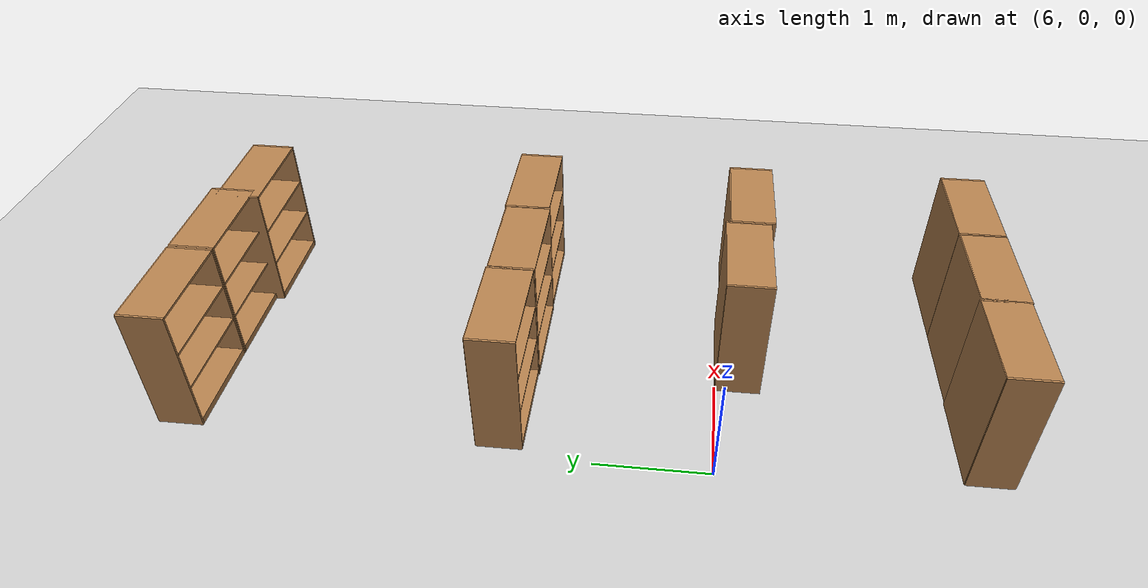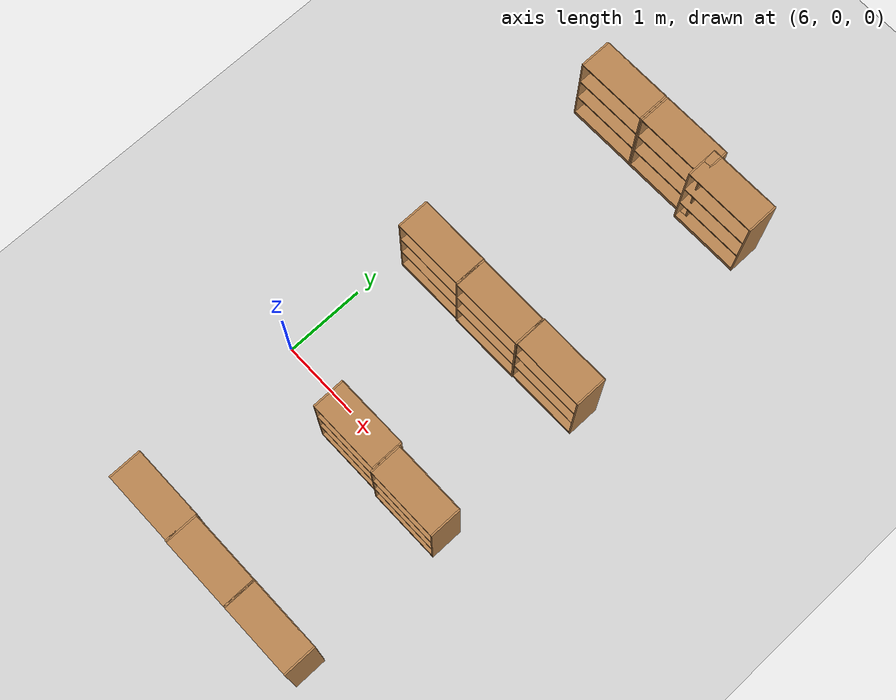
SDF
<sdf version="1.7">
 <world name="default">
  <model name="ground_plane">
   <static>1</static>
   <link name="link">
    <collision name="collision">
     <geometry><plane><normal>0 0 1</normal><size>100 100</size></plane></geometry>
     <surface>
      <contact><collide_bitmask>65535</collide_bitmask></contact>
      <friction><ode><mu>100</mu><mu2>50</mu2></ode></friction>
     </surface>
    </collision>
    <visual name="visual">
     <cast_shadows>0</cast_shadows>
     <geometry><plane><normal>0 0 1</normal><size>100 100</size></plane></geometry>
     <material>
      <script><uri>file://media/materials/scripts/gazebo.material</uri><name>Gazebo/Grey</name></script>
     </material>
    </visual>
   </link>
  </model>
  <model name="bookshelf_clone_14">
   <static>1</static>
   <link name="link">
    <inertial><mass>1</mass></inertial>
    <collision name="back">
     <pose>0 0.005 0.6 0 -0 0</pose>
     <geometry><box><size>0.9 0.01 1.2</size></box></geometry>
    </collision>
    <visual name="visual1">
     <pose>0 0.005 0.6 0 -0 0</pose>
     <geometry><box><size>0.9 0.01 1.2</size></box></geometry>
     <material>
      <script><uri>file://media/materials/scripts/gazebo.material</uri><name>Gazebo/Wood</name></script>
     </material>
    </visual>
    <collision name="left_side">
     <pose>0.45 -0.195 0.6 0 -0 0</pose>
     <geometry><box><size>0.02 0.4 1.2</size></box></geometry>
    </collision>
    <visual name="visual2">
     <pose>0.45 -0.195 0.6 0 -0 0</pose>
     <geometry><box><size>0.02 0.4 1.2</size></box></geometry>
     <material>
      <script><uri>file://media/materials/scripts/gazebo.material</uri><name>Gazebo/Wood</name></script>
     </material>
    </visual>
    <collision name="right_side">
     <pose>-0.45 -0.195 0.6 0 -0 0</pose>
     <geometry><box><size>0.02 0.4 1.2</size></box></geometry>
    </collision>
    <visual name="visual3">
     <pose>-0.45 -0.195 0.6 0 -0 0</pose>
     <geometry><box><size>0.02 0.4 1.2</size></box></geometry>
     <material>
      <script><uri>file://media/materials/scripts/gazebo.material</uri><name>Gazebo/Wood</name></script>
     </material>
    </visual>
    <collision name="bottom">
     <pose>0 -0.195 0.03 0 -0 0</pose>
     <geometry><box><size>0.88 0.4 0.06</size></box></geometry>
    </collision>
    <visual name="visual4">
     <pose>0 -0.195 0.03 0 -0 0</pose>
     <geometry><box><size>0.88 0.4 0.06</size></box></geometry>
     <material>
      <script><uri>file://media/materials/scripts/gazebo.material</uri><name>Gazebo/Wood</name></script>
     </material>
    </visual>
    <collision name="top">
     <pose>0 -0.195 1.19 0 -0 0</pose>
     <geometry><box><size>0.88 0.4 0.02</size></box></geometry>
    </collision>
    <visual name="visual5">
     <pose>0 -0.195 1.19 0 -0 0</pose>
     <geometry><box><size>0.88 0.4 0.02</size></box></geometry>
     <material>
      <script><uri>file://media/materials/scripts/gazebo.material</uri><name>Gazebo/Wood</name></script>
     </material>
    </visual>
    <collision name="low_shelf">
     <pose>0 -0.195 0.43 0 -0 0</pose>
     <geometry><box><size>0.88 0.4 0.02</size></box></geometry>
    </collision>
    <visual name="visual6">
     <pose>0 -0.195 0.43 0 -0 0</pose>
     <geometry><box><size>0.88 0.4 0.02</size></box></geometry>
     <material>
      <script><uri>file://media/materials/scripts/gazebo.material</uri><name>Gazebo/Wood</name></script>
     </material>
    </visual>
    <collision name="high_shelf">
     <pose>0 -0.195 0.8 0 -0 0</pose>
     <geometry><box><size>0.88 0.4 0.02</size></box></geometry>
    </collision>
    <visual name="visual7">
     <pose>0 -0.195 0.8 0 -0 0</pose>
     <geometry><box><size>0.88 0.4 0.02</size></box></geometry>
     <material>
      <script><uri>file://media/materials/scripts/gazebo.material</uri><name>Gazebo/Wood</name></script>
     </material>
    </visual>
   </link>
   <pose>8.25563 4.67392 0 0 -0 0</pose>
  </model>
  <model name="bookshelf_clone_15">
   <static>1</static>
   <link name="link">
    <inertial><mass>1</mass></inertial>
    <collision name="back">
     <pose>0 0.005 0.6 0 -0 0</pose>
     <geometry><box><size>0.9 0.01 1.2</size></box></geometry>
    </collision>
    <visual name="visual1">
     <pose>0 0.005 0.6 0 -0 0</pose>
     <geometry><box><size>0.9 0.01 1.2</size></box></geometry>
     <material>
      <script><uri>file://media/materials/scripts/gazebo.material</uri><name>Gazebo/Wood</name></script>
     </material>
    </visual>
    <collision name="left_side">
     <pose>0.45 -0.195 0.6 0 -0 0</pose>
     <geometry><box><size>0.02 0.4 1.2</size></box></geometry>
    </collision>
    <visual name="visual2">
     <pose>0.45 -0.195 0.6 0 -0 0</pose>
     <geometry><box><size>0.02 0.4 1.2</size></box></geometry>
     <material>
      <script><uri>file://media/materials/scripts/gazebo.material</uri><name>Gazebo/Wood</name></script>
     </material>
    </visual>
    <collision name="right_side">
     <pose>-0.45 -0.195 0.6 0 -0 0</pose>
     <geometry><box><size>0.02 0.4 1.2</size></box></geometry>
    </collision>
    <visual name="visual3">
     <pose>-0.45 -0.195 0.6 0 -0 0</pose>
     <geometry><box><size>0.02 0.4 1.2</size></box></geometry>
     <material>
      <script><uri>file://media/materials/scripts/gazebo.material</uri><name>Gazebo/Wood</name></script>
     </material>
    </visual>
    <collision name="bottom">
     <pose>0 -0.195 0.03 0 -0 0</pose>
     <geometry><box><size>0.88 0.4 0.06</size></box></geometry>
    </collision>
    <visual name="visual4">
     <pose>0 -0.195 0.03 0 -0 0</pose>
     <geometry><box><size>0.88 0.4 0.06</size></box></geometry>
     <material>
      <script><uri>file://media/materials/scripts/gazebo.material</uri><name>Gazebo/Wood</name></script>
     </material>
    </visual>
    <collision name="top">
     <pose>0 -0.195 1.19 0 -0 0</pose>
     <geometry><box><size>0.88 0.4 0.02</size></box></geometry>
    </collision>
    <visual name="visual5">
     <pose>0 -0.195 1.19 0 -0 0</pose>
     <geometry><box><size>0.88 0.4 0.02</size></box></geometry>
     <material>
      <script><uri>file://media/materials/scripts/gazebo.material</uri><name>Gazebo/Wood</name></script>
     </material>
    </visual>
    <collision name="low_shelf">
     <pose>0 -0.195 0.43 0 -0 0</pose>
     <geometry><box><size>0.88 0.4 0.02</size></box></geometry>
    </collision>
    <visual name="visual6">
     <pose>0 -0.195 0.43 0 -0 0</pose>
     <geometry><box><size>0.88 0.4 0.02</size></box></geometry>
     <material>
      <script><uri>file://media/materials/scripts/gazebo.material</uri><name>Gazebo/Wood</name></script>
     </material>
    </visual>
    <collision name="high_shelf">
     <pose>0 -0.195 0.8 0 -0 0</pose>
     <geometry><box><size>0.88 0.4 0.02</size></box></geometry>
    </collision>
    <visual name="visual7">
     <pose>0 -0.195 0.8 0 -0 0</pose>
     <geometry><box><size>0.88 0.4 0.02</size></box></geometry>
     <material>
      <script><uri>file://media/materials/scripts/gazebo.material</uri><name>Gazebo/Wood</name></script>
     </material>
    </visual>
   </link>
   <pose>7.45532 4.75433 0 0 -0 0</pose>
  </model>
  <model name="bookshelf_clone_16">
   <static>1</static>
   <link name="link">
    <inertial><mass>1</mass></inertial>
    <collision name="back">
     <pose>0 0.005 0.6 0 -0 0</pose>
     <geometry><box><size>0.9 0.01 1.2</size></box></geometry>
    </collision>
    <visual name="visual1">
     <pose>0 0.005 0.6 0 -0 0</pose>
     <geometry><box><size>0.9 0.01 1.2</size></box></geometry>
     <material>
      <script><uri>file://media/materials/scripts/gazebo.material</uri><name>Gazebo/Wood</name></script>
     </material>
    </visual>
    <collision name="left_side">
     <pose>0.45 -0.195 0.6 0 -0 0</pose>
     <geometry><box><size>0.02 0.4 1.2</size></box></geometry>
    </collision>
    <visual name="visual2">
     <pose>0.45 -0.195 0.6 0 -0 0</pose>
     <geometry><box><size>0.02 0.4 1.2</size></box></geometry>
     <material>
      <script><uri>file://media/materials/scripts/gazebo.material</uri><name>Gazebo/Wood</name></script>
     </material>
    </visual>
    <collision name="right_side">
     <pose>-0.45 -0.195 0.6 0 -0 0</pose>
     <geometry><box><size>0.02 0.4 1.2</size></box></geometry>
    </collision>
    <visual name="visual3">
     <pose>-0.45 -0.195 0.6 0 -0 0</pose>
     <geometry><box><size>0.02 0.4 1.2</size></box></geometry>
     <material>
      <script><uri>file://media/materials/scripts/gazebo.material</uri><name>Gazebo/Wood</name></script>
     </material>
    </visual>
    <collision name="bottom">
     <pose>0 -0.195 0.03 0 -0 0</pose>
     <geometry><box><size>0.88 0.4 0.06</size></box></geometry>
    </collision>
    <visual name="visual4">
     <pose>0 -0.195 0.03 0 -0 0</pose>
     <geometry><box><size>0.88 0.4 0.06</size></box></geometry>
     <material>
      <script><uri>file://media/materials/scripts/gazebo.material</uri><name>Gazebo/Wood</name></script>
     </material>
    </visual>
    <collision name="top">
     <pose>0 -0.195 1.19 0 -0 0</pose>
     <geometry><box><size>0.88 0.4 0.02</size></box></geometry>
    </collision>
    <visual name="visual5">
     <pose>0 -0.195 1.19 0 -0 0</pose>
     <geometry><box><size>0.88 0.4 0.02</size></box></geometry>
     <material>
      <script><uri>file://media/materials/scripts/gazebo.material</uri><name>Gazebo/Wood</name></script>
     </material>
    </visual>
    <collision name="low_shelf">
     <pose>0 -0.195 0.43 0 -0 0</pose>
     <geometry><box><size>0.88 0.4 0.02</size></box></geometry>
    </collision>
    <visual name="visual6">
     <pose>0 -0.195 0.43 0 -0 0</pose>
     <geometry><box><size>0.88 0.4 0.02</size></box></geometry>
     <material>
      <script><uri>file://media/materials/scripts/gazebo.material</uri><name>Gazebo/Wood</name></script>
     </material>
    </visual>
    <collision name="high_shelf">
     <pose>0 -0.195 0.8 0 -0 0</pose>
     <geometry><box><size>0.88 0.4 0.02</size></box></geometry>
    </collision>
    <visual name="visual7">
     <pose>0 -0.195 0.8 0 -0 0</pose>
     <geometry><box><size>0.88 0.4 0.02</size></box></geometry>
     <material>
      <script><uri>file://media/materials/scripts/gazebo.material</uri><name>Gazebo/Wood</name></script>
     </material>
    </visual>
   </link>
   <pose>6.5343 4.75553 0 0 -0 0</pose>
  </model>
  <model name="bookshelf_clone_18">
   <static>1</static>
   <link name="link">
    <inertial><mass>1</mass></inertial>
    <collision name="back">
     <pose>0 0.005 0.6 0 -0 0</pose>
     <geometry><box><size>0.9 0.01 1.2</size></box></geometry>
    </collision>
    <visual name="visual1">
     <pose>0 0.005 0.6 0 -0 0</pose>
     <geometry><box><size>0.9 0.01 1.2</size></box></geometry>
     <material>
      <script><uri>file://media/materials/scripts/gazebo.material</uri><name>Gazebo/Wood</name></script>
     </material>
    </visual>
    <collision name="left_side">
     <pose>0.45 -0.195 0.6 0 -0 0</pose>
     <geometry><box><size>0.02 0.4 1.2</size></box></geometry>
    </collision>
    <visual name="visual2">
     <pose>0.45 -0.195 0.6 0 -0 0</pose>
     <geometry><box><size>0.02 0.4 1.2</size></box></geometry>
     <material>
      <script><uri>file://media/materials/scripts/gazebo.material</uri><name>Gazebo/Wood</name></script>
     </material>
    </visual>
    <collision name="right_side">
     <pose>-0.45 -0.195 0.6 0 -0 0</pose>
     <geometry><box><size>0.02 0.4 1.2</size></box></geometry>
    </collision>
    <visual name="visual3">
     <pose>-0.45 -0.195 0.6 0 -0 0</pose>
     <geometry><box><size>0.02 0.4 1.2</size></box></geometry>
     <material>
      <script><uri>file://media/materials/scripts/gazebo.material</uri><name>Gazebo/Wood</name></script>
     </material>
    </visual>
    <collision name="bottom">
     <pose>0 -0.195 0.03 0 -0 0</pose>
     <geometry><box><size>0.88 0.4 0.06</size></box></geometry>
    </collision>
    <visual name="visual4">
     <pose>0 -0.195 0.03 0 -0 0</pose>
     <geometry><box><size>0.88 0.4 0.06</size></box></geometry>
     <material>
      <script><uri>file://media/materials/scripts/gazebo.material</uri><name>Gazebo/Wood</name></script>
     </material>
    </visual>
    <collision name="top">
     <pose>0 -0.195 1.19 0 -0 0</pose>
     <geometry><box><size>0.88 0.4 0.02</size></box></geometry>
    </collision>
    <visual name="visual5">
     <pose>0 -0.195 1.19 0 -0 0</pose>
     <geometry><box><size>0.88 0.4 0.02</size></box></geometry>
     <material>
      <script><uri>file://media/materials/scripts/gazebo.material</uri><name>Gazebo/Wood</name></script>
     </material>
    </visual>
    <collision name="low_shelf">
     <pose>0 -0.195 0.43 0 -0 0</pose>
     <geometry><box><size>0.88 0.4 0.02</size></box></geometry>
    </collision>
    <visual name="visual6">
     <pose>0 -0.195 0.43 0 -0 0</pose>
     <geometry><box><size>0.88 0.4 0.02</size></box></geometry>
     <material>
      <script><uri>file://media/materials/scripts/gazebo.material</uri><name>Gazebo/Wood</name></script>
     </material>
    </visual>
    <collision name="high_shelf">
     <pose>0 -0.195 0.8 0 -0 0</pose>
     <geometry><box><size>0.88 0.4 0.02</size></box></geometry>
    </collision>
    <visual name="visual7">
     <pose>0 -0.195 0.8 0 -0 0</pose>
     <geometry><box><size>0.88 0.4 0.02</size></box></geometry>
     <material>
      <script><uri>file://media/materials/scripts/gazebo.material</uri><name>Gazebo/Wood</name></script>
     </material>
    </visual>
   </link>
   <pose>8.36929 1.98739 0 0 -0 0</pose>
  </model>
  <model name="bookshelf_clone_19">
   <static>1</static>
   <link name="link">
    <inertial><mass>1</mass></inertial>
    <collision name="back">
     <pose>0 0.005 0.6 0 -0 0</pose>
     <geometry><box><size>0.9 0.01 1.2</size></box></geometry>
    </collision>
    <visual name="visual1">
     <pose>0 0.005 0.6 0 -0 0</pose>
     <geometry><box><size>0.9 0.01 1.2</size></box></geometry>
     <material>
      <script><uri>file://media/materials/scripts/gazebo.material</uri><name>Gazebo/Wood</name></script>
     </material>
    </visual>
    <collision name="left_side">
     <pose>0.45 -0.195 0.6 0 -0 0</pose>
     <geometry><box><size>0.02 0.4 1.2</size></box></geometry>
    </collision>
    <visual name="visual2">
     <pose>0.45 -0.195 0.6 0 -0 0</pose>
     <geometry><box><size>0.02 0.4 1.2</size></box></geometry>
     <material>
      <script><uri>file://media/materials/scripts/gazebo.material</uri><name>Gazebo/Wood</name></script>
     </material>
    </visual>
    <collision name="right_side">
     <pose>-0.45 -0.195 0.6 0 -0 0</pose>
     <geometry><box><size>0.02 0.4 1.2</size></box></geometry>
    </collision>
    <visual name="visual3">
     <pose>-0.45 -0.195 0.6 0 -0 0</pose>
     <geometry><box><size>0.02 0.4 1.2</size></box></geometry>
     <material>
      <script><uri>file://media/materials/scripts/gazebo.material</uri><name>Gazebo/Wood</name></script>
     </material>
    </visual>
    <collision name="bottom">
     <pose>0 -0.195 0.03 0 -0 0</pose>
     <geometry><box><size>0.88 0.4 0.06</size></box></geometry>
    </collision>
    <visual name="visual4">
     <pose>0 -0.195 0.03 0 -0 0</pose>
     <geometry><box><size>0.88 0.4 0.06</size></box></geometry>
     <material>
      <script><uri>file://media/materials/scripts/gazebo.material</uri><name>Gazebo/Wood</name></script>
     </material>
    </visual>
    <collision name="top">
     <pose>0 -0.195 1.19 0 -0 0</pose>
     <geometry><box><size>0.88 0.4 0.02</size></box></geometry>
    </collision>
    <visual name="visual5">
     <pose>0 -0.195 1.19 0 -0 0</pose>
     <geometry><box><size>0.88 0.4 0.02</size></box></geometry>
     <material>
      <script><uri>file://media/materials/scripts/gazebo.material</uri><name>Gazebo/Wood</name></script>
     </material>
    </visual>
    <collision name="low_shelf">
     <pose>0 -0.195 0.43 0 -0 0</pose>
     <geometry><box><size>0.88 0.4 0.02</size></box></geometry>
    </collision>
    <visual name="visual6">
     <pose>0 -0.195 0.43 0 -0 0</pose>
     <geometry><box><size>0.88 0.4 0.02</size></box></geometry>
     <material>
      <script><uri>file://media/materials/scripts/gazebo.material</uri><name>Gazebo/Wood</name></script>
     </material>
    </visual>
    <collision name="high_shelf">
     <pose>0 -0.195 0.8 0 -0 0</pose>
     <geometry><box><size>0.88 0.4 0.02</size></box></geometry>
    </collision>
    <visual name="visual7">
     <pose>0 -0.195 0.8 0 -0 0</pose>
     <geometry><box><size>0.88 0.4 0.02</size></box></geometry>
     <material>
      <script><uri>file://media/materials/scripts/gazebo.material</uri><name>Gazebo/Wood</name></script>
     </material>
    </visual>
   </link>
   <pose>7.46263 1.97882 0 0 -0 0</pose>
  </model>
  <model name="bookshelf_clone_20">
   <static>1</static>
   <link name="link">
    <inertial><mass>1</mass></inertial>
    <collision name="back">
     <pose>0 0.005 0.6 0 -0 0</pose>
     <geometry><box><size>0.9 0.01 1.2</size></box></geometry>
    </collision>
    <visual name="visual1">
     <pose>0 0.005 0.6 0 -0 0</pose>
     <geometry><box><size>0.9 0.01 1.2</size></box></geometry>
     <material>
      <script><uri>file://media/materials/scripts/gazebo.material</uri><name>Gazebo/Wood</name></script>
     </material>
    </visual>
    <collision name="left_side">
     <pose>0.45 -0.195 0.6 0 -0 0</pose>
     <geometry><box><size>0.02 0.4 1.2</size></box></geometry>
    </collision>
    <visual name="visual2">
     <pose>0.45 -0.195 0.6 0 -0 0</pose>
     <geometry><box><size>0.02 0.4 1.2</size></box></geometry>
     <material>
      <script><uri>file://media/materials/scripts/gazebo.material</uri><name>Gazebo/Wood</name></script>
     </material>
    </visual>
    <collision name="right_side">
     <pose>-0.45 -0.195 0.6 0 -0 0</pose>
     <geometry><box><size>0.02 0.4 1.2</size></box></geometry>
    </collision>
    <visual name="visual3">
     <pose>-0.45 -0.195 0.6 0 -0 0</pose>
     <geometry><box><size>0.02 0.4 1.2</size></box></geometry>
     <material>
      <script><uri>file://media/materials/scripts/gazebo.material</uri><name>Gazebo/Wood</name></script>
     </material>
    </visual>
    <collision name="bottom">
     <pose>0 -0.195 0.03 0 -0 0</pose>
     <geometry><box><size>0.88 0.4 0.06</size></box></geometry>
    </collision>
    <visual name="visual4">
     <pose>0 -0.195 0.03 0 -0 0</pose>
     <geometry><box><size>0.88 0.4 0.06</size></box></geometry>
     <material>
      <script><uri>file://media/materials/scripts/gazebo.material</uri><name>Gazebo/Wood</name></script>
     </material>
    </visual>
    <collision name="top">
     <pose>0 -0.195 1.19 0 -0 0</pose>
     <geometry><box><size>0.88 0.4 0.02</size></box></geometry>
    </collision>
    <visual name="visual5">
     <pose>0 -0.195 1.19 0 -0 0</pose>
     <geometry><box><size>0.88 0.4 0.02</size></box></geometry>
     <material>
      <script><uri>file://media/materials/scripts/gazebo.material</uri><name>Gazebo/Wood</name></script>
     </material>
    </visual>
    <collision name="low_shelf">
     <pose>0 -0.195 0.43 0 -0 0</pose>
     <geometry><box><size>0.88 0.4 0.02</size></box></geometry>
    </collision>
    <visual name="visual6">
     <pose>0 -0.195 0.43 0 -0 0</pose>
     <geometry><box><size>0.88 0.4 0.02</size></box></geometry>
     <material>
      <script><uri>file://media/materials/scripts/gazebo.material</uri><name>Gazebo/Wood</name></script>
     </material>
    </visual>
    <collision name="high_shelf">
     <pose>0 -0.195 0.8 0 -0 0</pose>
     <geometry><box><size>0.88 0.4 0.02</size></box></geometry>
    </collision>
    <visual name="visual7">
     <pose>0 -0.195 0.8 0 -0 0</pose>
     <geometry><box><size>0.88 0.4 0.02</size></box></geometry>
     <material>
      <script><uri>file://media/materials/scripts/gazebo.material</uri><name>Gazebo/Wood</name></script>
     </material>
    </visual>
   </link>
   <pose>6.55596 1.98739 0 0 -0 0</pose>
  </model>
  <model name="bookshelf_clone_22">
   <static>1</static>
   <link name="link">
    <inertial><mass>1</mass></inertial>
    <collision name="back">
     <pose>0 0.005 0.6 0 -0 0</pose>
     <geometry><box><size>0.9 0.01 1.2</size></box></geometry>
    </collision>
    <visual name="visual1">
     <pose>0 0.005 0.6 0 -0 0</pose>
     <geometry><box><size>0.9 0.01 1.2</size></box></geometry>
     <material>
      <script><uri>file://media/materials/scripts/gazebo.material</uri><name>Gazebo/Wood</name></script>
     </material>
    </visual>
    <collision name="left_side">
     <pose>0.45 -0.195 0.6 0 -0 0</pose>
     <geometry><box><size>0.02 0.4 1.2</size></box></geometry>
    </collision>
    <visual name="visual2">
     <pose>0.45 -0.195 0.6 0 -0 0</pose>
     <geometry><box><size>0.02 0.4 1.2</size></box></geometry>
     <material>
      <script><uri>file://media/materials/scripts/gazebo.material</uri><name>Gazebo/Wood</name></script>
     </material>
    </visual>
    <collision name="right_side">
     <pose>-0.45 -0.195 0.6 0 -0 0</pose>
     <geometry><box><size>0.02 0.4 1.2</size></box></geometry>
    </collision>
    <visual name="visual3">
     <pose>-0.45 -0.195 0.6 0 -0 0</pose>
     <geometry><box><size>0.02 0.4 1.2</size></box></geometry>
     <material>
      <script><uri>file://media/materials/scripts/gazebo.material</uri><name>Gazebo/Wood</name></script>
     </material>
    </visual>
    <collision name="bottom">
     <pose>0 -0.195 0.03 0 -0 0</pose>
     <geometry><box><size>0.88 0.4 0.06</size></box></geometry>
    </collision>
    <visual name="visual4">
     <pose>0 -0.195 0.03 0 -0 0</pose>
     <geometry><box><size>0.88 0.4 0.06</size></box></geometry>
     <material>
      <script><uri>file://media/materials/scripts/gazebo.material</uri><name>Gazebo/Wood</name></script>
     </material>
    </visual>
    <collision name="top">
     <pose>0 -0.195 1.19 0 -0 0</pose>
     <geometry><box><size>0.88 0.4 0.02</size></box></geometry>
    </collision>
    <visual name="visual5">
     <pose>0 -0.195 1.19 0 -0 0</pose>
     <geometry><box><size>0.88 0.4 0.02</size></box></geometry>
     <material>
      <script><uri>file://media/materials/scripts/gazebo.material</uri><name>Gazebo/Wood</name></script>
     </material>
    </visual>
    <collision name="low_shelf">
     <pose>0 -0.195 0.43 0 -0 0</pose>
     <geometry><box><size>0.88 0.4 0.02</size></box></geometry>
    </collision>
    <visual name="visual6">
     <pose>0 -0.195 0.43 0 -0 0</pose>
     <geometry><box><size>0.88 0.4 0.02</size></box></geometry>
     <material>
      <script><uri>file://media/materials/scripts/gazebo.material</uri><name>Gazebo/Wood</name></script>
     </material>
    </visual>
    <collision name="high_shelf">
     <pose>0 -0.195 0.8 0 -0 0</pose>
     <geometry><box><size>0.88 0.4 0.02</size></box></geometry>
    </collision>
    <visual name="visual7">
     <pose>0 -0.195 0.8 0 -0 0</pose>
     <geometry><box><size>0.88 0.4 0.02</size></box></geometry>
     <material>
      <script><uri>file://media/materials/scripts/gazebo.material</uri><name>Gazebo/Wood</name></script>
     </material>
    </visual>
   </link>
   <pose>8.34112 -0.04224 0 0 -0 0</pose>
  </model>
  <model name="bookshelf_clone_23">
   <static>1</static>
   <link name="link">
    <inertial><mass>1</mass></inertial>
    <collision name="back">
     <pose>0 0.005 0.6 0 -0 0</pose>
     <geometry><box><size>0.9 0.01 1.2</size></box></geometry>
    </collision>
    <visual name="visual1">
     <pose>0 0.005 0.6 0 -0 0</pose>
     <geometry><box><size>0.9 0.01 1.2</size></box></geometry>
     <material>
      <script><uri>file://media/materials/scripts/gazebo.material</uri><name>Gazebo/Wood</name></script>
     </material>
    </visual>
    <collision name="left_side">
     <pose>0.45 -0.195 0.6 0 -0 0</pose>
     <geometry><box><size>0.02 0.4 1.2</size></box></geometry>
    </collision>
    <visual name="visual2">
     <pose>0.45 -0.195 0.6 0 -0 0</pose>
     <geometry><box><size>0.02 0.4 1.2</size></box></geometry>
     <material>
      <script><uri>file://media/materials/scripts/gazebo.material</uri><name>Gazebo/Wood</name></script>
     </material>
    </visual>
    <collision name="right_side">
     <pose>-0.45 -0.195 0.6 0 -0 0</pose>
     <geometry><box><size>0.02 0.4 1.2</size></box></geometry>
    </collision>
    <visual name="visual3">
     <pose>-0.45 -0.195 0.6 0 -0 0</pose>
     <geometry><box><size>0.02 0.4 1.2</size></box></geometry>
     <material>
      <script><uri>file://media/materials/scripts/gazebo.material</uri><name>Gazebo/Wood</name></script>
     </material>
    </visual>
    <collision name="bottom">
     <pose>0 -0.195 0.03 0 -0 0</pose>
     <geometry><box><size>0.88 0.4 0.06</size></box></geometry>
    </collision>
    <visual name="visual4">
     <pose>0 -0.195 0.03 0 -0 0</pose>
     <geometry><box><size>0.88 0.4 0.06</size></box></geometry>
     <material>
      <script><uri>file://media/materials/scripts/gazebo.material</uri><name>Gazebo/Wood</name></script>
     </material>
    </visual>
    <collision name="top">
     <pose>0 -0.195 1.19 0 -0 0</pose>
     <geometry><box><size>0.88 0.4 0.02</size></box></geometry>
    </collision>
    <visual name="visual5">
     <pose>0 -0.195 1.19 0 -0 0</pose>
     <geometry><box><size>0.88 0.4 0.02</size></box></geometry>
     <material>
      <script><uri>file://media/materials/scripts/gazebo.material</uri><name>Gazebo/Wood</name></script>
     </material>
    </visual>
    <collision name="low_shelf">
     <pose>0 -0.195 0.43 0 -0 0</pose>
     <geometry><box><size>0.88 0.4 0.02</size></box></geometry>
    </collision>
    <visual name="visual6">
     <pose>0 -0.195 0.43 0 -0 0</pose>
     <geometry><box><size>0.88 0.4 0.02</size></box></geometry>
     <material>
      <script><uri>file://media/materials/scripts/gazebo.material</uri><name>Gazebo/Wood</name></script>
     </material>
    </visual>
    <collision name="high_shelf">
     <pose>0 -0.195 0.8 0 -0 0</pose>
     <geometry><box><size>0.88 0.4 0.02</size></box></geometry>
    </collision>
    <visual name="visual7">
     <pose>0 -0.195 0.8 0 -0 0</pose>
     <geometry><box><size>0.88 0.4 0.02</size></box></geometry>
     <material>
      <script><uri>file://media/materials/scripts/gazebo.material</uri><name>Gazebo/Wood</name></script>
     </material>
    </visual>
   </link>
   <pose>7.42762 -0.003693 0 0 -0 0</pose>
  </model>
  <model name="bookshelf_clone_26">
   <static>1</static>
   <link name="link">
    <inertial><mass>1</mass></inertial>
    <collision name="back">
     <pose>0 0.005 0.6 0 -0 0</pose>
     <geometry><box><size>0.9 0.01 1.2</size></box></geometry>
    </collision>
    <visual name="visual1">
     <pose>0 0.005 0.6 0 -0 0</pose>
     <geometry><box><size>0.9 0.01 1.2</size></box></geometry>
     <material>
      <script><uri>file://media/materials/scripts/gazebo.material</uri><name>Gazebo/Wood</name></script>
     </material>
    </visual>
    <collision name="left_side">
     <pose>0.45 -0.195 0.6 0 -0 0</pose>
     <geometry><box><size>0.02 0.4 1.2</size></box></geometry>
    </collision>
    <visual name="visual2">
     <pose>0.45 -0.195 0.6 0 -0 0</pose>
     <geometry><box><size>0.02 0.4 1.2</size></box></geometry>
     <material>
      <script><uri>file://media/materials/scripts/gazebo.material</uri><name>Gazebo/Wood</name></script>
     </material>
    </visual>
    <collision name="right_side">
     <pose>-0.45 -0.195 0.6 0 -0 0</pose>
     <geometry><box><size>0.02 0.4 1.2</size></box></geometry>
    </collision>
    <visual name="visual3">
     <pose>-0.45 -0.195 0.6 0 -0 0</pose>
     <geometry><box><size>0.02 0.4 1.2</size></box></geometry>
     <material>
      <script><uri>file://media/materials/scripts/gazebo.material</uri><name>Gazebo/Wood</name></script>
     </material>
    </visual>
    <collision name="bottom">
     <pose>0 -0.195 0.03 0 -0 0</pose>
     <geometry><box><size>0.88 0.4 0.06</size></box></geometry>
    </collision>
    <visual name="visual4">
     <pose>0 -0.195 0.03 0 -0 0</pose>
     <geometry><box><size>0.88 0.4 0.06</size></box></geometry>
     <material>
      <script><uri>file://media/materials/scripts/gazebo.material</uri><name>Gazebo/Wood</name></script>
     </material>
    </visual>
    <collision name="top">
     <pose>0 -0.195 1.19 0 -0 0</pose>
     <geometry><box><size>0.88 0.4 0.02</size></box></geometry>
    </collision>
    <visual name="visual5">
     <pose>0 -0.195 1.19 0 -0 0</pose>
     <geometry><box><size>0.88 0.4 0.02</size></box></geometry>
     <material>
      <script><uri>file://media/materials/scripts/gazebo.material</uri><name>Gazebo/Wood</name></script>
     </material>
    </visual>
    <collision name="low_shelf">
     <pose>0 -0.195 0.43 0 -0 0</pose>
     <geometry><box><size>0.88 0.4 0.02</size></box></geometry>
    </collision>
    <visual name="visual6">
     <pose>0 -0.195 0.43 0 -0 0</pose>
     <geometry><box><size>0.88 0.4 0.02</size></box></geometry>
     <material>
      <script><uri>file://media/materials/scripts/gazebo.material</uri><name>Gazebo/Wood</name></script>
     </material>
    </visual>
    <collision name="high_shelf">
     <pose>0 -0.195 0.8 0 -0 0</pose>
     <geometry><box><size>0.88 0.4 0.02</size></box></geometry>
    </collision>
    <visual name="visual7">
     <pose>0 -0.195 0.8 0 -0 0</pose>
     <geometry><box><size>0.88 0.4 0.02</size></box></geometry>
     <material>
      <script><uri>file://media/materials/scripts/gazebo.material</uri><name>Gazebo/Wood</name></script>
     </material>
    </visual>
   </link>
   <pose>8.36544 -2.02068 0 0 -0 0</pose>
  </model>
  <model name="bookshelf_clone_27">
   <static>1</static>
   <link name="link">
    <inertial><mass>1</mass></inertial>
    <collision name="back">
     <pose>0 0.005 0.6 0 -0 0</pose>
     <geometry><box><size>0.9 0.01 1.2</size></box></geometry>
    </collision>
    <visual name="visual1">
     <pose>0 0.005 0.6 0 -0 0</pose>
     <geometry><box><size>0.9 0.01 1.2</size></box></geometry>
     <material>
      <script><uri>file://media/materials/scripts/gazebo.material</uri><name>Gazebo/Wood</name></script>
     </material>
    </visual>
    <collision name="left_side">
     <pose>0.45 -0.195 0.6 0 -0 0</pose>
     <geometry><box><size>0.02 0.4 1.2</size></box></geometry>
    </collision>
    <visual name="visual2">
     <pose>0.45 -0.195 0.6 0 -0 0</pose>
     <geometry><box><size>0.02 0.4 1.2</size></box></geometry>
     <material>
      <script><uri>file://media/materials/scripts/gazebo.material</uri><name>Gazebo/Wood</name></script>
     </material>
    </visual>
    <collision name="right_side">
     <pose>-0.45 -0.195 0.6 0 -0 0</pose>
     <geometry><box><size>0.02 0.4 1.2</size></box></geometry>
    </collision>
    <visual name="visual3">
     <pose>-0.45 -0.195 0.6 0 -0 0</pose>
     <geometry><box><size>0.02 0.4 1.2</size></box></geometry>
     <material>
      <script><uri>file://media/materials/scripts/gazebo.material</uri><name>Gazebo/Wood</name></script>
     </material>
    </visual>
    <collision name="bottom">
     <pose>0 -0.195 0.03 0 -0 0</pose>
     <geometry><box><size>0.88 0.4 0.06</size></box></geometry>
    </collision>
    <visual name="visual4">
     <pose>0 -0.195 0.03 0 -0 0</pose>
     <geometry><box><size>0.88 0.4 0.06</size></box></geometry>
     <material>
      <script><uri>file://media/materials/scripts/gazebo.material</uri><name>Gazebo/Wood</name></script>
     </material>
    </visual>
    <collision name="top">
     <pose>0 -0.195 1.19 0 -0 0</pose>
     <geometry><box><size>0.88 0.4 0.02</size></box></geometry>
    </collision>
    <visual name="visual5">
     <pose>0 -0.195 1.19 0 -0 0</pose>
     <geometry><box><size>0.88 0.4 0.02</size></box></geometry>
     <material>
      <script><uri>file://media/materials/scripts/gazebo.material</uri><name>Gazebo/Wood</name></script>
     </material>
    </visual>
    <collision name="low_shelf">
     <pose>0 -0.195 0.43 0 -0 0</pose>
     <geometry><box><size>0.88 0.4 0.02</size></box></geometry>
    </collision>
    <visual name="visual6">
     <pose>0 -0.195 0.43 0 -0 0</pose>
     <geometry><box><size>0.88 0.4 0.02</size></box></geometry>
     <material>
      <script><uri>file://media/materials/scripts/gazebo.material</uri><name>Gazebo/Wood</name></script>
     </material>
    </visual>
    <collision name="high_shelf">
     <pose>0 -0.195 0.8 0 -0 0</pose>
     <geometry><box><size>0.88 0.4 0.02</size></box></geometry>
    </collision>
    <visual name="visual7">
     <pose>0 -0.195 0.8 0 -0 0</pose>
     <geometry><box><size>0.88 0.4 0.02</size></box></geometry>
     <material>
      <script><uri>file://media/materials/scripts/gazebo.material</uri><name>Gazebo/Wood</name></script>
     </material>
    </visual>
   </link>
   <pose>7.45889 -2.02068 0 0 -0 0</pose>
  </model>
  <model name="bookshelf_clone_28">
   <static>1</static>
   <link name="link">
    <inertial><mass>1</mass></inertial>
    <collision name="back">
     <pose>0 0.005 0.6 0 -0 0</pose>
     <geometry><box><size>0.9 0.01 1.2</size></box></geometry>
    </collision>
    <visual name="visual1">
     <pose>0 0.005 0.6 0 -0 0</pose>
     <geometry><box><size>0.9 0.01 1.2</size></box></geometry>
     <material>
      <script><uri>file://media/materials/scripts/gazebo.material</uri><name>Gazebo/Wood</name></script>
     </material>
    </visual>
    <collision name="left_side">
     <pose>0.45 -0.195 0.6 0 -0 0</pose>
     <geometry><box><size>0.02 0.4 1.2</size></box></geometry>
    </collision>
    <visual name="visual2">
     <pose>0.45 -0.195 0.6 0 -0 0</pose>
     <geometry><box><size>0.02 0.4 1.2</size></box></geometry>
     <material>
      <script><uri>file://media/materials/scripts/gazebo.material</uri><name>Gazebo/Wood</name></script>
     </material>
    </visual>
    <collision name="right_side">
     <pose>-0.45 -0.195 0.6 0 -0 0</pose>
     <geometry><box><size>0.02 0.4 1.2</size></box></geometry>
    </collision>
    <visual name="visual3">
     <pose>-0.45 -0.195 0.6 0 -0 0</pose>
     <geometry><box><size>0.02 0.4 1.2</size></box></geometry>
     <material>
      <script><uri>file://media/materials/scripts/gazebo.material</uri><name>Gazebo/Wood</name></script>
     </material>
    </visual>
    <collision name="bottom">
     <pose>0 -0.195 0.03 0 -0 0</pose>
     <geometry><box><size>0.88 0.4 0.06</size></box></geometry>
    </collision>
    <visual name="visual4">
     <pose>0 -0.195 0.03 0 -0 0</pose>
     <geometry><box><size>0.88 0.4 0.06</size></box></geometry>
     <material>
      <script><uri>file://media/materials/scripts/gazebo.material</uri><name>Gazebo/Wood</name></script>
     </material>
    </visual>
    <collision name="top">
     <pose>0 -0.195 1.19 0 -0 0</pose>
     <geometry><box><size>0.88 0.4 0.02</size></box></geometry>
    </collision>
    <visual name="visual5">
     <pose>0 -0.195 1.19 0 -0 0</pose>
     <geometry><box><size>0.88 0.4 0.02</size></box></geometry>
     <material>
      <script><uri>file://media/materials/scripts/gazebo.material</uri><name>Gazebo/Wood</name></script>
     </material>
    </visual>
    <collision name="low_shelf">
     <pose>0 -0.195 0.43 0 -0 0</pose>
     <geometry><box><size>0.88 0.4 0.02</size></box></geometry>
    </collision>
    <visual name="visual6">
     <pose>0 -0.195 0.43 0 -0 0</pose>
     <geometry><box><size>0.88 0.4 0.02</size></box></geometry>
     <material>
      <script><uri>file://media/materials/scripts/gazebo.material</uri><name>Gazebo/Wood</name></script>
     </material>
    </visual>
    <collision name="high_shelf">
     <pose>0 -0.195 0.8 0 -0 0</pose>
     <geometry><box><size>0.88 0.4 0.02</size></box></geometry>
    </collision>
    <visual name="visual7">
     <pose>0 -0.195 0.8 0 -0 0</pose>
     <geometry><box><size>0.88 0.4 0.02</size></box></geometry>
     <material>
      <script><uri>file://media/materials/scripts/gazebo.material</uri><name>Gazebo/Wood</name></script>
     </material>
    </visual>
   </link>
   <pose>6.56937 -2.01215 0 0 -0 0</pose>
  </model>
 </world>
</sdf>
